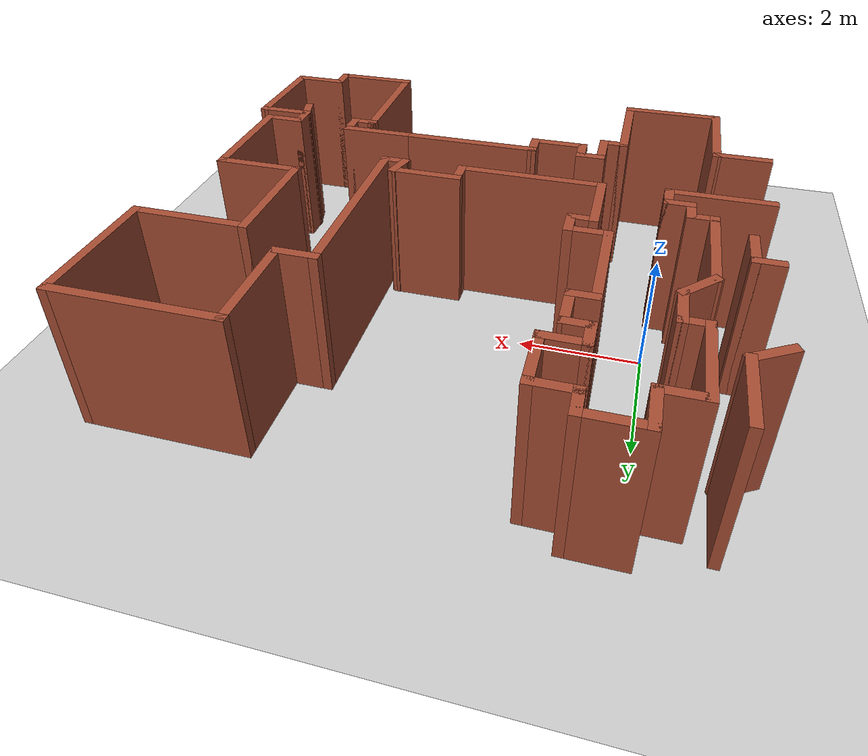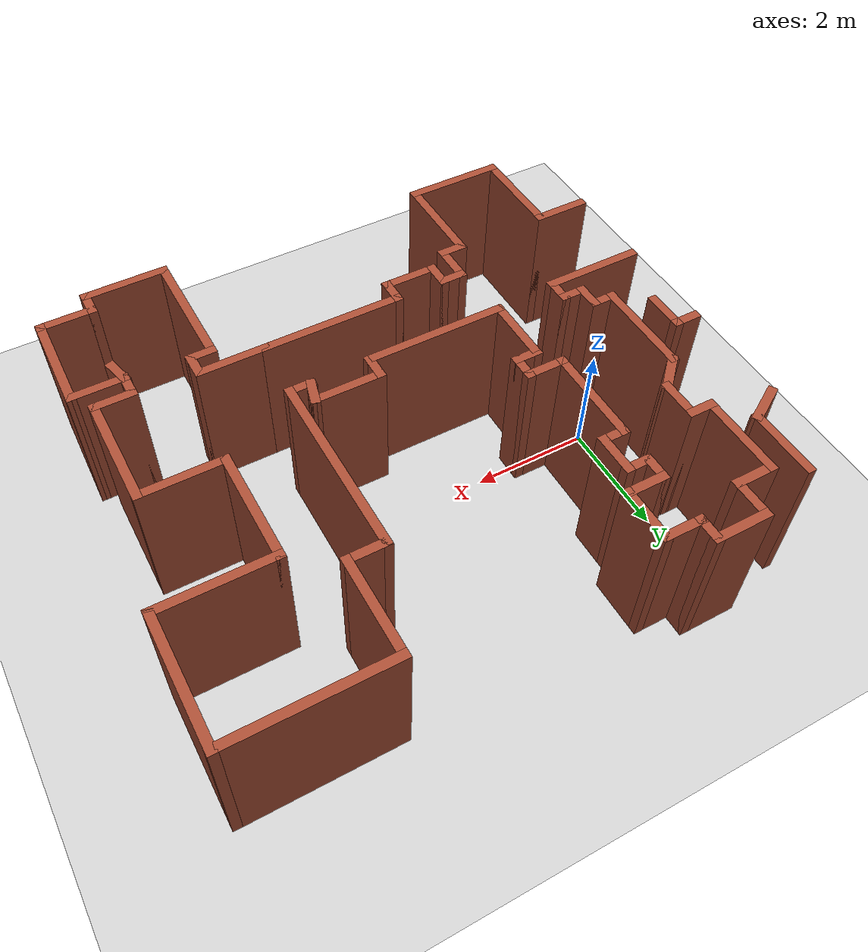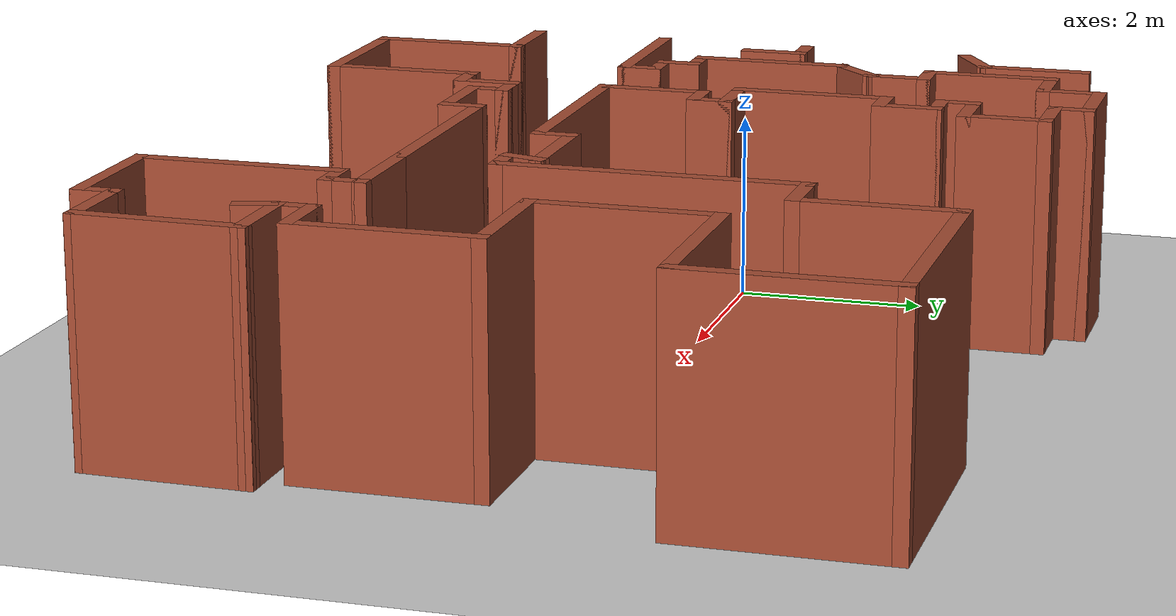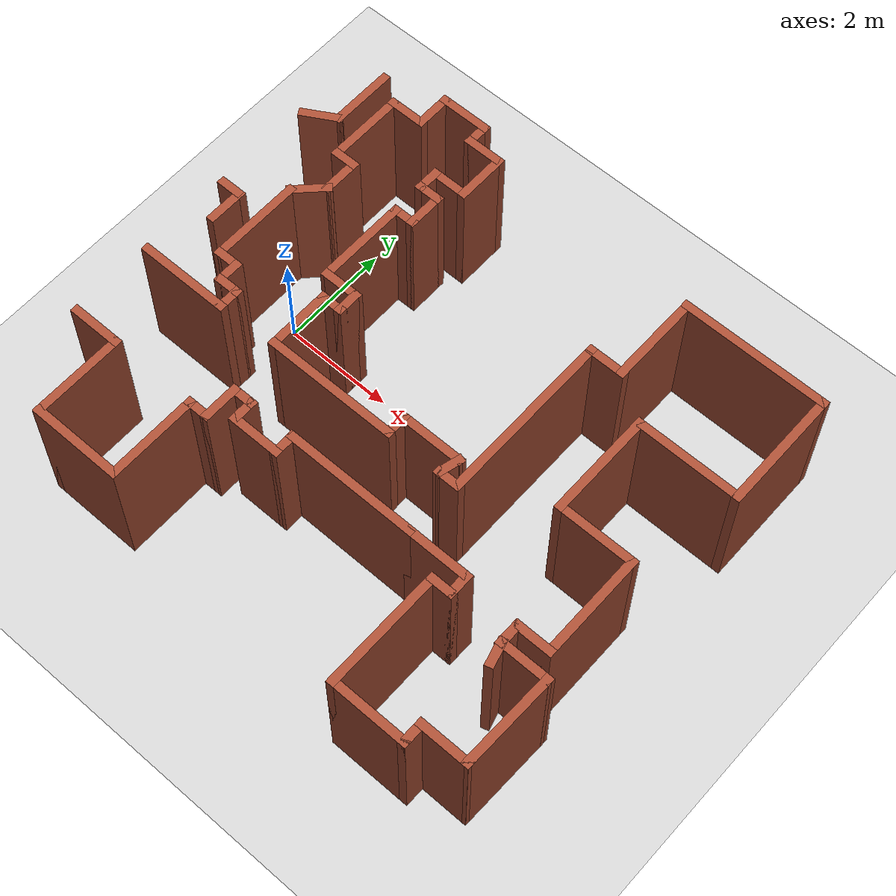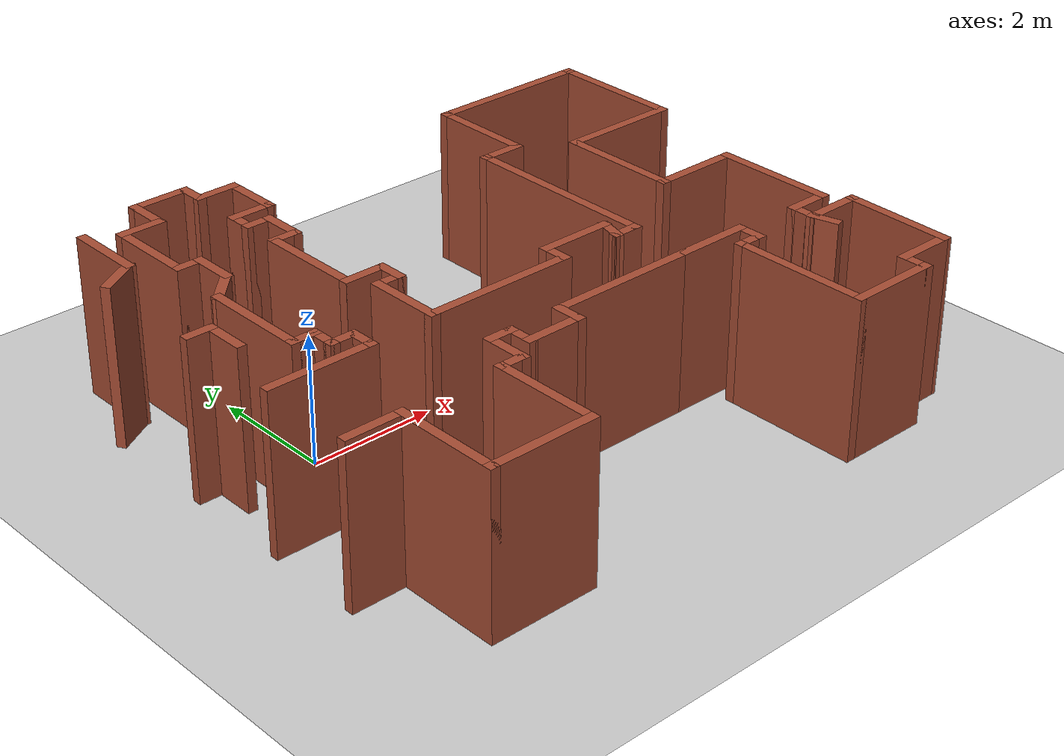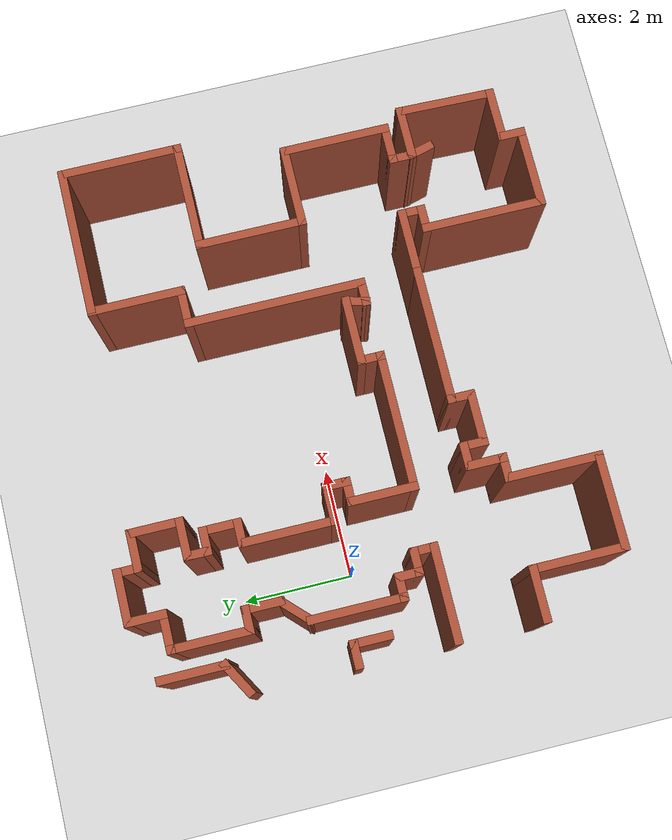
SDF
<sdf version="1.6">
 <world name="default">
  <model name="ground_plane">
   <static>1</static>
   <link name="link">
    <collision name="collision">
     <geometry><plane><normal>0 0 1</normal><size>100 100</size></plane></geometry>
     <surface>
      <contact><collide_bitmask>65535</collide_bitmask></contact>
      <friction><ode><mu>100</mu><mu2>50</mu2></ode></friction>
     </surface>
    </collision>
    <visual name="visual">
     <cast_shadows>0</cast_shadows>
     <geometry><plane><normal>0 0 1</normal><size>100 100</size></plane></geometry>
     <material>
      <script><uri>file://media/materials/scripts/gazebo.material</uri><name>Gazebo/Grey</name></script>
     </material>
    </visual>
   </link>
  </model>
  <model name="map_59">
   <pose>1.25432 0.29643 0 0 -0 0</pose>
   <link name="Wall_103">
    <collision name="Wall_103_Collision">
     <geometry><box><size>1 0.15 2.5</size></box></geometry>
     <pose>0 0 1.25 0 -0 0</pose>
    </collision>
    <visual name="Wall_103_Visual">
     <pose>0 0 1.25 0 -0 0</pose>
     <geometry><box><size>1 0.15 2.5</size></box></geometry>
     <material>
      <script><uri>file://media/materials/scripts/gazebo.material</uri><name>Gazebo/Bricks</name></script>
      <ambient>1 1 1 1</ambient>
     </material>
     <meta><layer>0</layer></meta>
    </visual>
    <pose>5.99854 -3.05386 0 0 -0 3.14159</pose>
   </link>
   <link name="Wall_104">
    <collision name="Wall_104_Collision">
     <geometry><box><size>0.5 0.15 2.5</size></box></geometry>
     <pose>0 0 1.25 0 -0 0</pose>
    </collision>
    <visual name="Wall_104_Visual">
     <pose>0 0 1.25 0 -0 0</pose>
     <geometry><box><size>0.5 0.15 2.5</size></box></geometry>
     <material>
      <script><uri>file://media/materials/scripts/gazebo.material</uri><name>Gazebo/Bricks</name></script>
      <ambient>1 1 1 1</ambient>
     </material>
     <meta><layer>0</layer></meta>
    </visual>
    <pose>5.57354 -2.87886 0 0 -0 1.5708</pose>
   </link>
   <link name="Wall_105">
    <collision name="Wall_105_Collision">
     <geometry><box><size>0.75 0.15 2.5</size></box></geometry>
     <pose>0 0 1.25 0 -0 0</pose>
    </collision>
    <visual name="Wall_105_Visual">
     <pose>0 0 1.25 0 -0 0</pose>
     <geometry><box><size>0.75 0.15 2.5</size></box></geometry>
     <material>
      <script><uri>file://media/materials/scripts/gazebo.material</uri><name>Gazebo/Bricks</name></script>
      <ambient>1 1 1 1</ambient>
     </material>
     <meta><layer>0</layer></meta>
    </visual>
    <pose>5.87354 -2.70386 0 0 -0 0</pose>
   </link>
   <link name="Wall_108">
    <collision name="Wall_108_Collision">
     <geometry><box><size>0.5 0.15 2.5</size></box></geometry>
     <pose>0 0 1.25 0 -0 0</pose>
    </collision>
    <visual name="Wall_108_Visual">
     <pose>0 0 1.25 0 -0 0</pose>
     <geometry><box><size>0.5 0.15 2.5</size></box></geometry>
     <material>
      <script><uri>file://media/materials/scripts/gazebo.material</uri><name>Gazebo/Bricks</name></script>
      <ambient>1 1 1 1</ambient>
     </material>
     <meta><layer>0</layer></meta>
    </visual>
    <pose>5.61884 -3.22289 0 0 -0 -1.309</pose>
   </link>
   <link name="Wall_114">
    <collision name="Wall_114_Collision">
     <geometry><box><size>1.5 0.15 2.5</size></box></geometry>
     <pose>0 0 1.25 0 -0 0</pose>
    </collision>
    <visual name="Wall_114_Visual">
     <pose>0 0 1.25 0 -0 0</pose>
     <geometry><box><size>1.5 0.15 2.5</size></box></geometry>
     <material>
      <script><uri>file://media/materials/scripts/gazebo.material</uri><name>Gazebo/Bricks</name></script>
      <ambient>1 1 1 1</ambient>
     </material>
     <meta><layer>0</layer></meta>
    </visual>
    <pose>4.86047 -5.06327 0 0 -0 0</pose>
   </link>
   <link name="Wall_115">
    <collision name="Wall_115_Collision">
     <geometry><box><size>0.5 0.15 2.5</size></box></geometry>
     <pose>0 0 1.25 0 -0 0</pose>
    </collision>
    <visual name="Wall_115_Visual">
     <pose>0 0 1.25 0 -0 0</pose>
     <geometry><box><size>0.5 0.15 2.5</size></box></geometry>
     <material>
      <script><uri>file://media/materials/scripts/gazebo.material</uri><name>Gazebo/Bricks</name></script>
      <ambient>1 1 1 1</ambient>
     </material>
     <meta><layer>0</layer></meta>
    </visual>
    <pose>5.53547 -4.88827 0 0 -0 1.5708</pose>
   </link>
   <link name="Wall_118">
    <collision name="Wall_118_Collision">
     <geometry><box><size>1 0.15 2.5</size></box></geometry>
     <pose>0 0 1.25 0 -0 0</pose>
    </collision>
    <visual name="Wall_118_Visual">
     <pose>0 0 1.25 0 -0 0</pose>
     <geometry><box><size>1 0.15 2.5</size></box></geometry>
     <material>
      <script><uri>file://media/materials/scripts/gazebo.material</uri><name>Gazebo/Bricks</name></script>
      <ambient>1 1 1 1</ambient>
     </material>
     <meta><layer>0</layer></meta>
    </visual>
    <pose>5.96047 -4.71327 0 0 -0 0</pose>
   </link>
   <link name="Wall_119">
    <collision name="Wall_119_Collision">
     <geometry><box><size>1.80985 0.15 2.5</size></box></geometry>
     <pose>0 0 1.25 0 -0 0</pose>
    </collision>
    <visual name="Wall_119_Visual">
     <pose>0 0 1.25 0 -0 0</pose>
     <geometry><box><size>1.80985 0.15 2.5</size></box></geometry>
     <material>
      <script><uri>file://media/materials/scripts/gazebo.material</uri><name>Gazebo/Bricks</name></script>
      <ambient>1 1 1 1</ambient>
     </material>
     <meta><layer>0</layer></meta>
    </visual>
    <pose>6.40451 -3.88356 0 0 -0 1.54786</pose>
   </link>
   <link name="Wall_121">
    <collision name="Wall_121_Collision">
     <geometry><box><size>2 0.15 2.5</size></box></geometry>
     <pose>0 0 1.25 0 -0 0</pose>
    </collision>
    <visual name="Wall_121_Visual">
     <pose>0 0 1.25 0 -0 0</pose>
     <geometry><box><size>2 0.15 2.5</size></box></geometry>
     <material>
      <script><uri>file://media/materials/scripts/gazebo.material</uri><name>Gazebo/Bricks</name></script>
      <ambient>1 1 1 1</ambient>
     </material>
     <meta><layer>0</layer></meta>
    </visual>
    <pose>4.82354 0.071143 0 0 -0 1.5708</pose>
   </link>
   <link name="Wall_122">
    <collision name="Wall_122_Collision">
     <geometry><box><size>2 0.15 2.5</size></box></geometry>
     <pose>0 0 1.25 0 -0 0</pose>
    </collision>
    <visual name="Wall_122_Visual">
     <pose>0 0 1.25 0 -0 0</pose>
     <geometry><box><size>2 0.15 2.5</size></box></geometry>
     <material>
      <script><uri>file://media/materials/scripts/gazebo.material</uri><name>Gazebo/Bricks</name></script>
      <ambient>1 1 1 1</ambient>
     </material>
     <meta><layer>0</layer></meta>
    </visual>
    <pose>5.74854 0.996143 0 0 -0 0</pose>
   </link>
   <link name="Wall_123">
    <collision name="Wall_123_Collision">
     <geometry><box><size>2.25 0.15 2.5</size></box></geometry>
     <pose>0 0 1.25 0 -0 0</pose>
    </collision>
    <visual name="Wall_123_Visual">
     <pose>0 0 1.25 0 -0 0</pose>
     <geometry><box><size>2.25 0.15 2.5</size></box></geometry>
     <material>
      <script><uri>file://media/materials/scripts/gazebo.material</uri><name>Gazebo/Bricks</name></script>
      <ambient>1 1 1 1</ambient>
     </material>
     <meta><layer>0</layer></meta>
    </visual>
    <pose>6.67354 2.04614 0 0 -0 1.5708</pose>
   </link>
   <link name="Wall_124">
    <collision name="Wall_124_Collision">
     <geometry><box><size>2.75 0.15 2.5</size></box></geometry>
     <pose>0 0 1.25 0 -0 0</pose>
    </collision>
    <visual name="Wall_124_Visual">
     <pose>0 0 1.25 0 -0 0</pose>
     <geometry><box><size>2.75 0.15 2.5</size></box></geometry>
     <material>
      <script><uri>file://media/materials/scripts/gazebo.material</uri><name>Gazebo/Bricks</name></script>
      <ambient>1 1 1 1</ambient>
     </material>
     <meta><layer>0</layer></meta>
    </visual>
    <pose>5.37354 3.09614 0 0 -0 3.14159</pose>
   </link>
   <link name="Wall_125">
    <collision name="Wall_125_Collision">
     <geometry><box><size>1.75 0.15 2.5</size></box></geometry>
     <pose>0 0 1.25 0 -0 0</pose>
    </collision>
    <visual name="Wall_125_Visual">
     <pose>0 0 1.25 0 -0 0</pose>
     <geometry><box><size>1.75 0.15 2.5</size></box></geometry>
     <material>
      <script><uri>file://media/materials/scripts/gazebo.material</uri><name>Gazebo/Bricks</name></script>
      <ambient>1 1 1 1</ambient>
     </material>
     <meta><layer>0</layer></meta>
    </visual>
    <pose>4.07354 2.29614 0 0 -0 -1.5708</pose>
   </link>
   <link name="Wall_126">
    <collision name="Wall_126_Collision">
     <geometry><box><size>0.75 0.15 2.5</size></box></geometry>
     <pose>0 0 1.25 0 -0 0</pose>
    </collision>
    <visual name="Wall_126_Visual">
     <pose>0 0 1.25 0 -0 0</pose>
     <geometry><box><size>0.75 0.15 2.5</size></box></geometry>
     <material>
      <script><uri>file://media/materials/scripts/gazebo.material</uri><name>Gazebo/Bricks</name></script>
      <ambient>1 1 1 1</ambient>
     </material>
     <meta><layer>0</layer></meta>
    </visual>
    <pose>3.77354 1.49614 0 0 -0 3.14159</pose>
   </link>
   <link name="Wall_127">
    <collision name="Wall_127_Collision">
     <geometry><box><size>3.25 0.15 2.5</size></box></geometry>
     <pose>0 0 1.25 0 -0 0</pose>
    </collision>
    <visual name="Wall_127_Visual">
     <pose>0 0 1.25 0 -0 0</pose>
     <geometry><box><size>3.25 0.15 2.5</size></box></geometry>
     <material>
      <script><uri>file://media/materials/scripts/gazebo.material</uri><name>Gazebo/Bricks</name></script>
      <ambient>1 1 1 1</ambient>
     </material>
     <meta><layer>0</layer></meta>
    </visual>
    <pose>3.47354 -0.053857 0 0 -0 -1.5708</pose>
   </link>
   <link name="Wall_128">
    <collision name="Wall_128_Collision">
     <geometry><box><size>0.5 0.15 2.5</size></box></geometry>
     <pose>0 0 1.25 0 -0 0</pose>
    </collision>
    <visual name="Wall_128_Visual">
     <pose>0 0 1.25 0 -0 0</pose>
     <geometry><box><size>0.5 0.15 2.5</size></box></geometry>
     <material>
      <script><uri>file://media/materials/scripts/gazebo.material</uri><name>Gazebo/Bricks</name></script>
      <ambient>1 1 1 1</ambient>
     </material>
     <meta><layer>0</layer></meta>
    </visual>
    <pose>3.29854 -1.60386 0 0 -0 3.14159</pose>
   </link>
   <link name="Wall_129">
    <collision name="Wall_129_Collision">
     <geometry><box><size>0.5 0.15 2.5</size></box></geometry>
     <pose>0 0 1.25 0 -0 0</pose>
    </collision>
    <visual name="Wall_129_Visual">
     <pose>0 0 1.25 0 -0 0</pose>
     <geometry><box><size>0.5 0.15 2.5</size></box></geometry>
     <material>
      <script><uri>file://media/materials/scripts/gazebo.material</uri><name>Gazebo/Bricks</name></script>
      <ambient>1 1 1 1</ambient>
     </material>
     <meta><layer>0</layer></meta>
    </visual>
    <pose>3.16884 -1.43482 0 0 -0 1.309</pose>
   </link>
   <link name="Wall_130">
    <collision name="Wall_130_Collision">
     <geometry><box><size>1.25 0.15 2.5</size></box></geometry>
     <pose>0 0 1.25 0 -0 0</pose>
    </collision>
    <visual name="Wall_130_Visual">
     <pose>0 0 1.25 0 -0 0</pose>
     <geometry><box><size>1.25 0.15 2.5</size></box></geometry>
     <material>
      <script><uri>file://media/materials/scripts/gazebo.material</uri><name>Gazebo/Bricks</name></script>
      <ambient>1 1 1 1</ambient>
     </material>
     <meta><layer>0</layer></meta>
    </visual>
    <pose>2.66413 -1.26578 0 0 -0 3.14159</pose>
   </link>
   <link name="Wall_131">
    <collision name="Wall_131_Collision">
     <geometry><box><size>0.5 0.15 2.5</size></box></geometry>
     <pose>0 0 1.25 0 -0 0</pose>
    </collision>
    <visual name="Wall_131_Visual">
     <pose>0 0 1.25 0 -0 0</pose>
     <geometry><box><size>0.5 0.15 2.5</size></box></geometry>
     <material>
      <script><uri>file://media/materials/scripts/gazebo.material</uri><name>Gazebo/Bricks</name></script>
      <ambient>1 1 1 1</ambient>
     </material>
     <meta><layer>0</layer></meta>
    </visual>
    <pose>2.11413 -1.44078 0 0 -0 -1.5708</pose>
   </link>
   <link name="Wall_132">
    <collision name="Wall_132_Collision">
     <geometry><box><size>2.5 0.15 2.5</size></box></geometry>
     <pose>0 0 1.25 0 -0 0</pose>
    </collision>
    <visual name="Wall_132_Visual">
     <pose>0 0 1.25 0 -0 0</pose>
     <geometry><box><size>2.5 0.15 2.5</size></box></geometry>
     <material>
      <script><uri>file://media/materials/scripts/gazebo.material</uri><name>Gazebo/Bricks</name></script>
      <ambient>1 1 1 1</ambient>
     </material>
     <meta><layer>0</layer></meta>
    </visual>
    <pose>0.93913 -1.61578 0 0 -0 3.14159</pose>
   </link>
   <link name="Wall_133">
    <collision name="Wall_133_Collision">
     <geometry><box><size>1.25 0.15 2.5</size></box></geometry>
     <pose>0 0 1.25 0 -0 0</pose>
    </collision>
    <visual name="Wall_133_Visual">
     <pose>0 0 1.25 0 -0 0</pose>
     <geometry><box><size>1.25 0.15 2.5</size></box></geometry>
     <material>
      <script><uri>file://media/materials/scripts/gazebo.material</uri><name>Gazebo/Bricks</name></script>
      <ambient>1 1 1 1</ambient>
     </material>
     <meta><layer>0</layer></meta>
    </visual>
    <pose>-0.23587 -1.06578 0 0 -0 1.5708</pose>
   </link>
   <link name="Wall_134">
    <collision name="Wall_134_Collision">
     <geometry><box><size>0.5 0.15 2.5</size></box></geometry>
     <pose>0 0 1.25 0 -0 0</pose>
    </collision>
    <visual name="Wall_134_Visual">
     <pose>0 0 1.25 0 -0 0</pose>
     <geometry><box><size>0.5 0.15 2.5</size></box></geometry>
     <material>
      <script><uri>file://media/materials/scripts/gazebo.material</uri><name>Gazebo/Bricks</name></script>
      <ambient>1 1 1 1</ambient>
     </material>
     <meta><layer>0</layer></meta>
    </visual>
    <pose>-0.06087 -0.515783 0 0 -0 0</pose>
   </link>
   <link name="Wall_135">
    <collision name="Wall_135_Collision">
     <geometry><box><size>0.5 0.15 2.5</size></box></geometry>
     <pose>0 0 1.25 0 -0 0</pose>
    </collision>
    <visual name="Wall_135_Visual">
     <pose>0 0 1.25 0 -0 0</pose>
     <geometry><box><size>0.5 0.15 2.5</size></box></geometry>
     <material>
      <script><uri>file://media/materials/scripts/gazebo.material</uri><name>Gazebo/Bricks</name></script>
      <ambient>1 1 1 1</ambient>
     </material>
     <meta><layer>0</layer></meta>
    </visual>
    <pose>0.11413 -0.340783 0 0 -0 1.5708</pose>
   </link>
   <link name="Wall_136">
    <collision name="Wall_136_Collision">
     <geometry><box><size>0.75 0.15 2.5</size></box></geometry>
     <pose>0 0 1.25 0 -0 0</pose>
    </collision>
    <visual name="Wall_136_Visual">
     <pose>0 0 1.25 0 -0 0</pose>
     <geometry><box><size>0.75 0.15 2.5</size></box></geometry>
     <material>
      <script><uri>file://media/materials/scripts/gazebo.material</uri><name>Gazebo/Bricks</name></script>
      <ambient>1 1 1 1</ambient>
     </material>
     <meta><layer>0</layer></meta>
    </visual>
    <pose>-0.18587 -0.165783 0 0 -0 3.14159</pose>
   </link>
   <link name="Wall_139">
    <collision name="Wall_139_Collision">
     <geometry><box><size>1.75 0.15 2.5</size></box></geometry>
     <pose>0 0 1.25 0 -0 0</pose>
    </collision>
    <visual name="Wall_139_Visual">
     <pose>0 0 1.25 0 -0 0</pose>
     <geometry><box><size>1.75 0.15 2.5</size></box></geometry>
     <material>
      <script><uri>file://media/materials/scripts/gazebo.material</uri><name>Gazebo/Bricks</name></script>
      <ambient>1 1 1 1</ambient>
     </material>
     <meta><layer>0</layer></meta>
    </visual>
    <pose>-0.48587 0.634217 0 0 -0 1.5708</pose>
   </link>
   <link name="Wall_140">
    <collision name="Wall_140_Collision">
     <geometry><box><size>0.5 0.15 2.5</size></box></geometry>
     <pose>0 0 1.25 0 -0 0</pose>
    </collision>
    <visual name="Wall_140_Visual">
     <pose>0 0 1.25 0 -0 0</pose>
     <geometry><box><size>0.5 0.15 2.5</size></box></geometry>
     <material>
      <script><uri>file://media/materials/scripts/gazebo.material</uri><name>Gazebo/Bricks</name></script>
      <ambient>1 1 1 1</ambient>
     </material>
     <meta><layer>0</layer></meta>
    </visual>
    <pose>-0.31087 1.43422 0 0 -0 0</pose>
   </link>
   <link name="Wall_143">
    <collision name="Wall_143_Collision">
     <geometry><box><size>0.75 0.15 2.5</size></box></geometry>
     <pose>0 0 1.25 0 -0 0</pose>
    </collision>
    <visual name="Wall_143_Visual">
     <pose>0 0 1.25 0 -0 0</pose>
     <geometry><box><size>0.75 0.15 2.5</size></box></geometry>
     <material>
      <script><uri>file://media/materials/scripts/gazebo.material</uri><name>Gazebo/Bricks</name></script>
      <ambient>1 1 1 1</ambient>
     </material>
     <meta><layer>0</layer></meta>
    </visual>
    <pose>-0.13587 1.73422 0 0 -0 1.5708</pose>
   </link>
   <link name="Wall_144">
    <collision name="Wall_144_Collision">
     <geometry><box><size>0.5 0.15 2.5</size></box></geometry>
     <pose>0 0 1.25 0 -0 0</pose>
    </collision>
    <visual name="Wall_144_Visual">
     <pose>0 0 1.25 0 -0 0</pose>
     <geometry><box><size>0.5 0.15 2.5</size></box></geometry>
     <material>
      <script><uri>file://media/materials/scripts/gazebo.material</uri><name>Gazebo/Bricks</name></script>
      <ambient>1 1 1 1</ambient>
     </material>
     <meta><layer>0</layer></meta>
    </visual>
    <pose>-0.31087 2.03422 0 0 -0 3.14159</pose>
   </link>
   <link name="Wall_145">
    <collision name="Wall_145_Collision">
     <geometry><box><size>0.5 0.15 2.5</size></box></geometry>
     <pose>0 0 1.25 0 -0 0</pose>
    </collision>
    <visual name="Wall_145_Visual">
     <pose>0 0 1.25 0 -0 0</pose>
     <geometry><box><size>0.5 0.15 2.5</size></box></geometry>
     <material>
      <script><uri>file://media/materials/scripts/gazebo.material</uri><name>Gazebo/Bricks</name></script>
      <ambient>1 1 1 1</ambient>
     </material>
     <meta><layer>0</layer></meta>
    </visual>
    <pose>-0.48587 2.20922 0 0 -0 1.5708</pose>
   </link>
   <link name="Wall_146">
    <collision name="Wall_146_Collision">
     <geometry><box><size>0.75 0.15 2.5</size></box></geometry>
     <pose>0 0 1.25 0 -0 0</pose>
    </collision>
    <visual name="Wall_146_Visual">
     <pose>0 0 1.25 0 -0 0</pose>
     <geometry><box><size>0.75 0.15 2.5</size></box></geometry>
     <material>
      <script><uri>file://media/materials/scripts/gazebo.material</uri><name>Gazebo/Bricks</name></script>
      <ambient>1 1 1 1</ambient>
     </material>
     <meta><layer>0</layer></meta>
    </visual>
    <pose>-0.18587 2.38422 0 0 -0 0</pose>
   </link>
   <link name="Wall_147">
    <collision name="Wall_147_Collision">
     <geometry><box><size>1 0.15 2.5</size></box></geometry>
     <pose>0 0 1.25 0 -0 0</pose>
    </collision>
    <visual name="Wall_147_Visual">
     <pose>0 0 1.25 0 -0 0</pose>
     <geometry><box><size>1 0.15 2.5</size></box></geometry>
     <material>
      <script><uri>file://media/materials/scripts/gazebo.material</uri><name>Gazebo/Bricks</name></script>
      <ambient>1 1 1 1</ambient>
     </material>
     <meta><layer>0</layer></meta>
    </visual>
    <pose>0.11413 2.80922 0 0 -0 1.5708</pose>
   </link>
   <link name="Wall_148">
    <collision name="Wall_148_Collision">
     <geometry><box><size>0.75 0.15 2.5</size></box></geometry>
     <pose>0 0 1.25 0 -0 0</pose>
    </collision>
    <visual name="Wall_148_Visual">
     <pose>0 0 1.25 0 -0 0</pose>
     <geometry><box><size>0.75 0.15 2.5</size></box></geometry>
     <material>
      <script><uri>file://media/materials/scripts/gazebo.material</uri><name>Gazebo/Bricks</name></script>
      <ambient>1 1 1 1</ambient>
     </material>
     <meta><layer>0</layer></meta>
    </visual>
    <pose>-0.18587 3.23422 0 0 -0 3.14159</pose>
   </link>
   <link name="Wall_149">
    <collision name="Wall_149_Collision">
     <geometry><box><size>0.5 0.15 2.5</size></box></geometry>
     <pose>0 0 1.25 0 -0 0</pose>
    </collision>
    <visual name="Wall_149_Visual">
     <pose>0 0 1.25 0 -0 0</pose>
     <geometry><box><size>0.5 0.15 2.5</size></box></geometry>
     <material>
      <script><uri>file://media/materials/scripts/gazebo.material</uri><name>Gazebo/Bricks</name></script>
      <ambient>1 1 1 1</ambient>
     </material>
     <meta><layer>0</layer></meta>
    </visual>
    <pose>-0.48587 3.40922 0 0 -0 1.5708</pose>
   </link>
   <link name="Wall_150">
    <collision name="Wall_150_Collision">
     <geometry><box><size>1 0.15 2.5</size></box></geometry>
     <pose>0 0 1.25 0 -0 0</pose>
    </collision>
    <visual name="Wall_150_Visual">
     <pose>0 0 1.25 0 -0 0</pose>
     <geometry><box><size>1 0.15 2.5</size></box></geometry>
     <material>
      <script><uri>file://media/materials/scripts/gazebo.material</uri><name>Gazebo/Bricks</name></script>
      <ambient>1 1 1 1</ambient>
     </material>
     <meta><layer>0</layer></meta>
    </visual>
    <pose>-0.91087 3.58422 0 0 -0 3.14159</pose>
   </link>
   <link name="Wall_151">
    <collision name="Wall_151_Collision">
     <geometry><box><size>0.75 0.15 2.5</size></box></geometry>
     <pose>0 0 1.25 0 -0 0</pose>
    </collision>
    <visual name="Wall_151_Visual">
     <pose>0 0 1.25 0 -0 0</pose>
     <geometry><box><size>0.75 0.15 2.5</size></box></geometry>
     <material>
      <script><uri>file://media/materials/scripts/gazebo.material</uri><name>Gazebo/Bricks</name></script>
      <ambient>1 1 1 1</ambient>
     </material>
     <meta><layer>0</layer></meta>
    </visual>
    <pose>-1.33587 3.28422 0 0 -0 -1.5708</pose>
   </link>
   <link name="Wall_152">
    <collision name="Wall_152_Collision">
     <geometry><box><size>0.75 0.15 2.5</size></box></geometry>
     <pose>0 0 1.25 0 -0 0</pose>
    </collision>
    <visual name="Wall_152_Visual">
     <pose>0 0 1.25 0 -0 0</pose>
     <geometry><box><size>0.75 0.15 2.5</size></box></geometry>
     <material>
      <script><uri>file://media/materials/scripts/gazebo.material</uri><name>Gazebo/Bricks</name></script>
      <ambient>1 1 1 1</ambient>
     </material>
     <meta><layer>0</layer></meta>
    </visual>
    <pose>-1.63587 2.98422 0 0 -0 3.14159</pose>
   </link>
   <link name="Wall_153">
    <collision name="Wall_153_Collision">
     <geometry><box><size>1.5 0.15 2.5</size></box></geometry>
     <pose>0 0 1.25 0 -0 0</pose>
    </collision>
    <visual name="Wall_153_Visual">
     <pose>0 0 1.25 0 -0 0</pose>
     <geometry><box><size>1.5 0.15 2.5</size></box></geometry>
     <material>
      <script><uri>file://media/materials/scripts/gazebo.material</uri><name>Gazebo/Bricks</name></script>
      <ambient>1 1 1 1</ambient>
     </material>
     <meta><layer>0</layer></meta>
    </visual>
    <pose>-1.93587 2.30922 0 0 -0 -1.5708</pose>
   </link>
   <link name="Wall_154">
    <collision name="Wall_154_Collision">
     <geometry><box><size>0.5 0.15 2.5</size></box></geometry>
     <pose>0 0 1.25 0 -0 0</pose>
    </collision>
    <visual name="Wall_154_Visual">
     <pose>0 0 1.25 0 -0 0</pose>
     <geometry><box><size>0.5 0.15 2.5</size></box></geometry>
     <material>
      <script><uri>file://media/materials/scripts/gazebo.material</uri><name>Gazebo/Bricks</name></script>
      <ambient>1 1 1 1</ambient>
     </material>
     <meta><layer>0</layer></meta>
    </visual>
    <pose>-1.76087 1.63422 0 0 -0 0</pose>
   </link>
   <link name="Wall_155">
    <collision name="Wall_155_Collision">
     <geometry><box><size>0.75 0.15 2.5</size></box></geometry>
     <pose>0 0 1.25 0 -0 0</pose>
    </collision>
    <visual name="Wall_155_Visual">
     <pose>0 0 1.25 0 -0 0</pose>
     <geometry><box><size>0.75 0.15 2.5</size></box></geometry>
     <material>
      <script><uri>file://media/materials/scripts/gazebo.material</uri><name>Gazebo/Bricks</name></script>
      <ambient>1 1 1 1</ambient>
     </material>
     <meta><layer>0</layer></meta>
    </visual>
    <pose>-1.58587 1.33422 0 0 -0 -1.5708</pose>
   </link>
   <link name="Wall_156">
    <collision name="Wall_156_Collision">
     <geometry><box><size>0.75 0.15 2.5</size></box></geometry>
     <pose>0 0 1.25 0 -0 0</pose>
    </collision>
    <visual name="Wall_156_Visual">
     <pose>0 0 1.25 0 -0 0</pose>
     <geometry><box><size>0.75 0.15 2.5</size></box></geometry>
     <material>
      <script><uri>file://media/materials/scripts/gazebo.material</uri><name>Gazebo/Bricks</name></script>
      <ambient>1 1 1 1</ambient>
     </material>
     <meta><layer>0</layer></meta>
    </visual>
    <pose>-1.798 0.822085 0 0 -0 -2.35619</pose>
   </link>
   <link name="Wall_160">
    <collision name="Wall_160_Collision">
     <geometry><box><size>1.75 0.15 2.5</size></box></geometry>
     <pose>0 0 1.25 0 -0 0</pose>
    </collision>
    <visual name="Wall_160_Visual">
     <pose>0 0 1.25 0 -0 0</pose>
     <geometry><box><size>1.75 0.15 2.5</size></box></geometry>
     <material>
      <script><uri>file://media/materials/scripts/gazebo.material</uri><name>Gazebo/Bricks</name></script>
      <ambient>1 1 1 1</ambient>
     </material>
     <meta><layer>0</layer></meta>
    </visual>
    <pose>-2.01013 -0.190047 0 0 -0 -1.5708</pose>
   </link>
   <link name="Wall_161">
    <collision name="Wall_161_Collision">
     <geometry><box><size>0.5 0.15 2.5</size></box></geometry>
     <pose>0 0 1.25 0 -0 0</pose>
    </collision>
    <visual name="Wall_161_Visual">
     <pose>0 0 1.25 0 -0 0</pose>
     <geometry><box><size>0.5 0.15 2.5</size></box></geometry>
     <material>
      <script><uri>file://media/materials/scripts/gazebo.material</uri><name>Gazebo/Bricks</name></script>
      <ambient>1 1 1 1</ambient>
     </material>
     <meta><layer>0</layer></meta>
    </visual>
    <pose>-1.83513 -0.990047 0 0 -0 0</pose>
   </link>
   <link name="Wall_162">
    <collision name="Wall_162_Collision">
     <geometry><box><size>0.5 0.15 2.5</size></box></geometry>
     <pose>0 0 1.25 0 -0 0</pose>
    </collision>
    <visual name="Wall_162_Visual">
     <pose>0 0 1.25 0 -0 0</pose>
     <geometry><box><size>0.5 0.15 2.5</size></box></geometry>
     <material>
      <script><uri>file://media/materials/scripts/gazebo.material</uri><name>Gazebo/Bricks</name></script>
      <ambient>1 1 1 1</ambient>
     </material>
     <meta><layer>0</layer></meta>
    </visual>
    <pose>-1.66013 -1.16505 0 0 -0 -1.5708</pose>
   </link>
   <link name="Wall_163">
    <collision name="Wall_163_Collision">
     <geometry><box><size>0.5 0.15 2.5</size></box></geometry>
     <pose>0 0 1.25 0 -0 0</pose>
    </collision>
    <visual name="Wall_163_Visual">
     <pose>0 0 1.25 0 -0 0</pose>
     <geometry><box><size>0.5 0.15 2.5</size></box></geometry>
     <material>
      <script><uri>file://media/materials/scripts/gazebo.material</uri><name>Gazebo/Bricks</name></script>
      <ambient>1 1 1 1</ambient>
     </material>
     <meta><layer>0</layer></meta>
    </visual>
    <pose>-1.48513 -1.34005 0 0 -0 0</pose>
   </link>
   <link name="Wall_164">
    <collision name="Wall_164_Collision">
     <geometry><box><size>0.5 0.15 2.5</size></box></geometry>
     <pose>0 0 1.25 0 -0 0</pose>
    </collision>
    <visual name="Wall_164_Visual">
     <pose>0 0 1.25 0 -0 0</pose>
     <geometry><box><size>0.5 0.15 2.5</size></box></geometry>
     <material>
      <script><uri>file://media/materials/scripts/gazebo.material</uri><name>Gazebo/Bricks</name></script>
      <ambient>1 1 1 1</ambient>
     </material>
     <meta><layer>0</layer></meta>
    </visual>
    <pose>-1.31013 -1.51505 0 0 -0 -1.5708</pose>
   </link>
   <link name="Wall_165">
    <collision name="Wall_165_Collision">
     <geometry><box><size>1.75 0.15 2.5</size></box></geometry>
     <pose>0 0 1.25 0 -0 0</pose>
    </collision>
    <visual name="Wall_165_Visual">
     <pose>0 0 1.25 0 -0 0</pose>
     <geometry><box><size>1.75 0.15 2.5</size></box></geometry>
     <material>
      <script><uri>file://media/materials/scripts/gazebo.material</uri><name>Gazebo/Bricks</name></script>
      <ambient>1 1 1 1</ambient>
     </material>
     <meta><layer>0</layer></meta>
    </visual>
    <pose>-2.11013 -1.69005 0 0 -0 3.14159</pose>
   </link>
   <link name="Wall_168">
    <collision name="Wall_168_Collision">
     <geometry><box><size>0.75 0.15 2.5</size></box></geometry>
     <pose>0 0 1.25 0 -0 0</pose>
    </collision>
    <visual name="Wall_168_Visual">
     <pose>0 0 1.25 0 -0 0</pose>
     <geometry><box><size>0.75 0.15 2.5</size></box></geometry>
     <material>
      <script><uri>file://media/materials/scripts/gazebo.material</uri><name>Gazebo/Bricks</name></script>
      <ambient>1 1 1 1</ambient>
     </material>
     <meta><layer>0</layer></meta>
    </visual>
    <pose>-2.56013 -0.290047 0 0 -0 1.5708</pose>
   </link>
   <link name="Wall_169">
    <collision name="Wall_169_Collision">
     <geometry><box><size>0.5 0.15 2.5</size></box></geometry>
     <pose>0 0 1.25 0 -0 0</pose>
    </collision>
    <visual name="Wall_169_Visual">
     <pose>0 0 1.25 0 -0 0</pose>
     <geometry><box><size>0.5 0.15 2.5</size></box></geometry>
     <material>
      <script><uri>file://media/materials/scripts/gazebo.material</uri><name>Gazebo/Bricks</name></script>
      <ambient>1 1 1 1</ambient>
     </material>
     <meta><layer>0</layer></meta>
    </visual>
    <pose>-2.73513 0.009953 0 0 -0 3.14159</pose>
   </link>
   <link name="Wall_171">
    <collision name="Wall_171_Collision">
     <geometry><box><size>0.75 0.15 2.5</size></box></geometry>
     <pose>0 0 1.25 0 -0 0</pose>
    </collision>
    <visual name="Wall_171_Visual">
     <pose>0 0 1.25 0 -0 0</pose>
     <geometry><box><size>0.75 0.15 2.5</size></box></geometry>
     <material>
      <script><uri>file://media/materials/scripts/gazebo.material</uri><name>Gazebo/Bricks</name></script>
      <ambient>1 1 1 1</ambient>
     </material>
     <meta><layer>0</layer></meta>
    </visual>
    <pose>-2.65033 2.00995 0 0 -0 0.523599</pose>
   </link>
   <link name="Wall_172">
    <collision name="Wall_172_Collision">
     <geometry><box><size>1.25 0.15 2.5</size></box></geometry>
     <pose>0 0 1.25 0 -0 0</pose>
    </collision>
    <visual name="Wall_172_Visual">
     <pose>0 0 1.25 0 -0 0</pose>
     <geometry><box><size>1.25 0.15 2.5</size></box></geometry>
     <material>
      <script><uri>file://media/materials/scripts/gazebo.material</uri><name>Gazebo/Bricks</name></script>
      <ambient>1 1 1 1</ambient>
     </material>
     <meta><layer>0</layer></meta>
    </visual>
    <pose>-2.39052 2.70995 0 0 -0 1.5708</pose>
   </link>
   <link name="Wall_60">
    <collision name="Wall_60_Collision">
     <geometry><box><size>1 0.15 2.5</size></box></geometry>
     <pose>0 0 1.25 0 -0 0</pose>
    </collision>
    <visual name="Wall_60_Visual">
     <pose>0 0 1.25 0 -0 0</pose>
     <geometry><box><size>1 0.15 2.5</size></box></geometry>
     <material>
      <script><uri>file://media/materials/scripts/gazebo.material</uri><name>Gazebo/Bricks</name></script>
      <ambient>1 1 1 1</ambient>
     </material>
     <meta><layer>0</layer></meta>
    </visual>
    <pose>-2.48953 -3.21327 0 0 -0 0</pose>
   </link>
   <link name="Wall_61">
    <collision name="Wall_61_Collision">
     <geometry><box><size>1.75 0.15 2.5</size></box></geometry>
     <pose>0 0 1.25 0 -0 0</pose>
    </collision>
    <visual name="Wall_61_Visual">
     <pose>0 0 1.25 0 -0 0</pose>
     <geometry><box><size>1.75 0.15 2.5</size></box></geometry>
     <material>
      <script><uri>file://media/materials/scripts/gazebo.material</uri><name>Gazebo/Bricks</name></script>
      <ambient>1 1 1 1</ambient>
     </material>
     <meta><layer>0</layer></meta>
    </visual>
    <pose>-2.06453 -4.01327 0 0 -0 -1.5708</pose>
   </link>
   <link name="Wall_62">
    <collision name="Wall_62_Collision">
     <geometry><box><size>1.75 0.15 2.5</size></box></geometry>
     <pose>0 0 1.25 0 -0 0</pose>
    </collision>
    <visual name="Wall_62_Visual">
     <pose>0 0 1.25 0 -0 0</pose>
     <geometry><box><size>1.75 0.15 2.5</size></box></geometry>
     <material>
      <script><uri>file://media/materials/scripts/gazebo.material</uri><name>Gazebo/Bricks</name></script>
      <ambient>1 1 1 1</ambient>
     </material>
     <meta><layer>0</layer></meta>
    </visual>
    <pose>-1.26453 -4.81327 0 0 -0 0</pose>
   </link>
   <link name="Wall_63">
    <collision name="Wall_63_Collision">
     <geometry><box><size>1.75 0.15 2.5</size></box></geometry>
     <pose>0 0 1.25 0 -0 0</pose>
    </collision>
    <visual name="Wall_63_Visual">
     <pose>0 0 1.25 0 -0 0</pose>
     <geometry><box><size>1.75 0.15 2.5</size></box></geometry>
     <material>
      <script><uri>file://media/materials/scripts/gazebo.material</uri><name>Gazebo/Bricks</name></script>
      <ambient>1 1 1 1</ambient>
     </material>
     <meta><layer>0</layer></meta>
    </visual>
    <pose>-0.464531 -4.01327 0 0 -0 1.5708</pose>
   </link>
   <link name="Wall_64">
    <collision name="Wall_64_Collision">
     <geometry><box><size>0.5 0.15 2.5</size></box></geometry>
     <pose>0 0 1.25 0 -0 0</pose>
    </collision>
    <visual name="Wall_64_Visual">
     <pose>0 0 1.25 0 -0 0</pose>
     <geometry><box><size>0.5 0.15 2.5</size></box></geometry>
     <material>
      <script><uri>file://media/materials/scripts/gazebo.material</uri><name>Gazebo/Bricks</name></script>
      <ambient>1 1 1 1</ambient>
     </material>
     <meta><layer>0</layer></meta>
    </visual>
    <pose>-0.289531 -3.21327 0 0 -0 0</pose>
   </link>
   <link name="Wall_65">
    <collision name="Wall_65_Collision">
     <geometry><box><size>0.75 0.15 2.5</size></box></geometry>
     <pose>0 0 1.25 0 -0 0</pose>
    </collision>
    <visual name="Wall_65_Visual">
     <pose>0 0 1.25 0 -0 0</pose>
     <geometry><box><size>0.75 0.15 2.5</size></box></geometry>
     <material>
      <script><uri>file://media/materials/scripts/gazebo.material</uri><name>Gazebo/Bricks</name></script>
      <ambient>1 1 1 1</ambient>
     </material>
     <meta><layer>0</layer></meta>
    </visual>
    <pose>-0.114531 -2.91327 0 0 -0 1.5708</pose>
   </link>
   <link name="Wall_66">
    <collision name="Wall_66_Collision">
     <geometry><box><size>0.5 0.15 2.5</size></box></geometry>
     <pose>0 0 1.25 0 -0 0</pose>
    </collision>
    <visual name="Wall_66_Visual">
     <pose>0 0 1.25 0 -0 0</pose>
     <geometry><box><size>0.5 0.15 2.5</size></box></geometry>
     <material>
      <script><uri>file://media/materials/scripts/gazebo.material</uri><name>Gazebo/Bricks</name></script>
      <ambient>1 1 1 1</ambient>
     </material>
     <meta><layer>0</layer></meta>
    </visual>
    <pose>0.060469 -2.61327 0 0 -0 0</pose>
   </link>
   <link name="Wall_67">
    <collision name="Wall_67_Collision">
     <geometry><box><size>0.5 0.15 2.5</size></box></geometry>
     <pose>0 0 1.25 0 -0 0</pose>
    </collision>
    <visual name="Wall_67_Visual">
     <pose>0 0 1.25 0 -0 0</pose>
     <geometry><box><size>0.5 0.15 2.5</size></box></geometry>
     <material>
      <script><uri>file://media/materials/scripts/gazebo.material</uri><name>Gazebo/Bricks</name></script>
      <ambient>1 1 1 1</ambient>
     </material>
     <meta><layer>0</layer></meta>
    </visual>
    <pose>0.235469 -2.78827 0 0 -0 -1.5708</pose>
   </link>
   <link name="Wall_68">
    <collision name="Wall_68_Collision">
     <geometry><box><size>1 0.15 2.5</size></box></geometry>
     <pose>0 0 1.25 0 -0 0</pose>
    </collision>
    <visual name="Wall_68_Visual">
     <pose>0 0 1.25 0 -0 0</pose>
     <geometry><box><size>1 0.15 2.5</size></box></geometry>
     <material>
      <script><uri>file://media/materials/scripts/gazebo.material</uri><name>Gazebo/Bricks</name></script>
      <ambient>1 1 1 1</ambient>
     </material>
     <meta><layer>0</layer></meta>
    </visual>
    <pose>0.660469 -2.96327 0 0 -0 0</pose>
   </link>
   <link name="Wall_71">
    <collision name="Wall_71_Collision">
     <geometry><box><size>0.5 0.15 2.5</size></box></geometry>
     <pose>0 0 1.25 0 -0 0</pose>
    </collision>
    <visual name="Wall_71_Visual">
     <pose>0 0 1.25 0 -0 0</pose>
     <geometry><box><size>0.5 0.15 2.5</size></box></geometry>
     <material>
      <script><uri>file://media/materials/scripts/gazebo.material</uri><name>Gazebo/Bricks</name></script>
      <ambient>1 1 1 1</ambient>
     </material>
     <meta><layer>0</layer></meta>
    </visual>
    <pose>1.08547 -2.78827 0 0 -0 1.5708</pose>
   </link>
   <link name="Wall_72">
    <collision name="Wall_72_Collision">
     <geometry><box><size>2.5 0.15 2.5</size></box></geometry>
     <pose>0 0 1.25 0 -0 0</pose>
    </collision>
    <visual name="Wall_72_Visual">
     <pose>0 0 1.25 0 -0 0</pose>
     <geometry><box><size>2.5 0.15 2.5</size></box></geometry>
     <material>
      <script><uri>file://media/materials/scripts/gazebo.material</uri><name>Gazebo/Bricks</name></script>
      <ambient>1 1 1 1</ambient>
     </material>
     <meta><layer>0</layer></meta>
    </visual>
    <pose>2.26047 -2.61327 0 0 -0 0</pose>
   </link>
   <link name="Wall_73">
    <collision name="Wall_73_Collision">
     <geometry><box><size>1.25 0.15 2.5</size></box></geometry>
     <pose>0 0 1.25 0 -0 0</pose>
    </collision>
    <visual name="Wall_73_Visual">
     <pose>0 0 1.25 0 -0 0</pose>
     <geometry><box><size>1.25 0.15 2.5</size></box></geometry>
     <material>
      <script><uri>file://media/materials/scripts/gazebo.material</uri><name>Gazebo/Bricks</name></script>
      <ambient>1 1 1 1</ambient>
     </material>
     <meta><layer>0</layer></meta>
    </visual>
    <pose>3.98547 -2.61327 0 0 -0 0</pose>
   </link>
   <link name="Wall_74">
    <collision name="Wall_74_Collision">
     <geometry><box><size>0.5 0.15 2.5</size></box></geometry>
     <pose>0 0 1.25 0 -0 0</pose>
    </collision>
    <visual name="Wall_74_Visual">
     <pose>0 0 1.25 0 -0 0</pose>
     <geometry><box><size>0.5 0.15 2.5</size></box></geometry>
     <material>
      <script><uri>file://media/materials/scripts/gazebo.material</uri><name>Gazebo/Bricks</name></script>
      <ambient>1 1 1 1</ambient>
     </material>
     <meta><layer>0</layer></meta>
    </visual>
    <pose>4.53547 -2.78827 0 0 -0 -1.5708</pose>
   </link>
   <link name="Wall_75">
    <collision name="Wall_75_Collision">
     <geometry><box><size>0.5 0.15 2.5</size></box></geometry>
     <pose>0 0 1.25 0 -0 0</pose>
    </collision>
    <visual name="Wall_75_Visual">
     <pose>0 0 1.25 0 -0 0</pose>
     <geometry><box><size>0.5 0.15 2.5</size></box></geometry>
     <material>
      <script><uri>file://media/materials/scripts/gazebo.material</uri><name>Gazebo/Bricks</name></script>
      <ambient>1 1 1 1</ambient>
     </material>
     <meta><layer>0</layer></meta>
    </visual>
    <pose>4.36047 -2.96327 0 0 -0 3.14159</pose>
   </link>
   <link name="Wall_76">
    <collision name="Wall_76_Collision">
     <geometry><box><size>2.25 0.15 2.5</size></box></geometry>
     <pose>0 0 1.25 0 -0 0</pose>
    </collision>
    <visual name="Wall_76_Visual">
     <pose>0 0 1.25 0 -0 0</pose>
     <geometry><box><size>2.25 0.15 2.5</size></box></geometry>
     <material>
      <script><uri>file://media/materials/scripts/gazebo.material</uri><name>Gazebo/Bricks</name></script>
      <ambient>1 1 1 1</ambient>
     </material>
     <meta><layer>0</layer></meta>
    </visual>
    <pose>4.18547 -4.01327 0 0 -0 -1.5708</pose>
   </link>
   <link name="Wall_92">
    <collision name="Wall_92_Collision">
     <geometry><box><size>2 0.15 2.5</size></box></geometry>
     <pose>0 0 1.25 0 -0 0</pose>
    </collision>
    <visual name="Wall_92_Visual">
     <pose>0 0 1.25 0 -0 0</pose>
     <geometry><box><size>2 0.15 2.5</size></box></geometry>
     <material>
      <script><uri>file://media/materials/scripts/gazebo.material</uri><name>Gazebo/Bricks</name></script>
      <ambient>1 1 1 1</ambient>
     </material>
     <meta><layer>0</layer></meta>
    </visual>
    <pose>6.17354 -1.77886 0 0 -0 1.5708</pose>
   </link>
   <link name="Wall_93">
    <collision name="Wall_93_Collision">
     <geometry><box><size>1.5 0.15 2.5</size></box></geometry>
     <pose>0 0 1.25 0 -0 0</pose>
    </collision>
    <visual name="Wall_93_Visual">
     <pose>0 0 1.25 0 -0 0</pose>
     <geometry><box><size>1.5 0.15 2.5</size></box></geometry>
     <material>
      <script><uri>file://media/materials/scripts/gazebo.material</uri><name>Gazebo/Bricks</name></script>
      <ambient>1 1 1 1</ambient>
     </material>
     <meta><layer>0</layer></meta>
    </visual>
    <pose>5.49854 -0.853857 0 0 -0 3.14159</pose>
   </link>
   <static>1</static>
  </model>
 </world>
</sdf>
